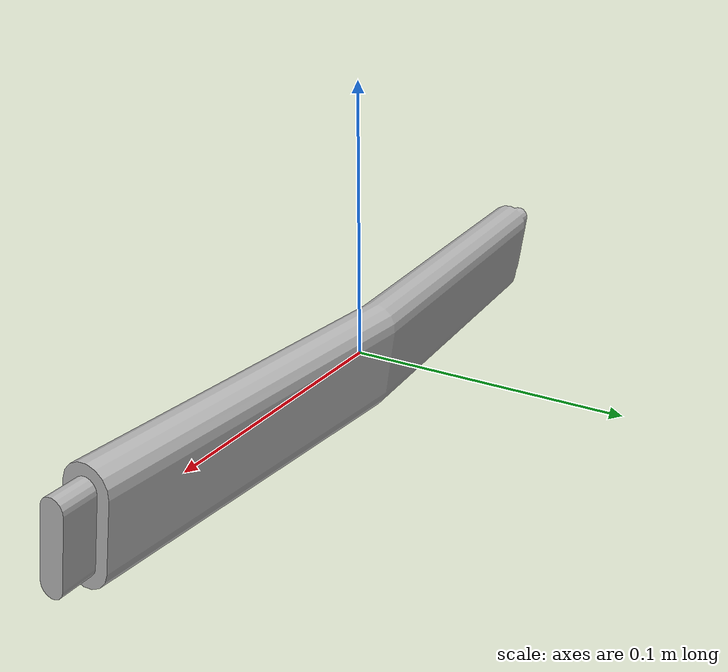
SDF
<?xml version='1.0'?>
<sdf version="1.4">
  <model name="chair_ivar_part2">
    <link name="mesh_link2">
      <visual name="visual2">
        <geometry>
          <mesh>
            <uri>model://ivar_chair/meshes/2.stl</uri>
            <scale>0.00065 0.00065 0.00065</scale>
          </mesh>
        </geometry>
      </visual>
      <collision name="collision2">
        <geometry>
          <mesh>
            <uri>model://ivar_chair/meshes/2.stl</uri>
            <scale>0.00065 0.00065 0.00065</scale>
          </mesh>
        </geometry>
      </collision>
    </link>
  </model>
</sdf>
